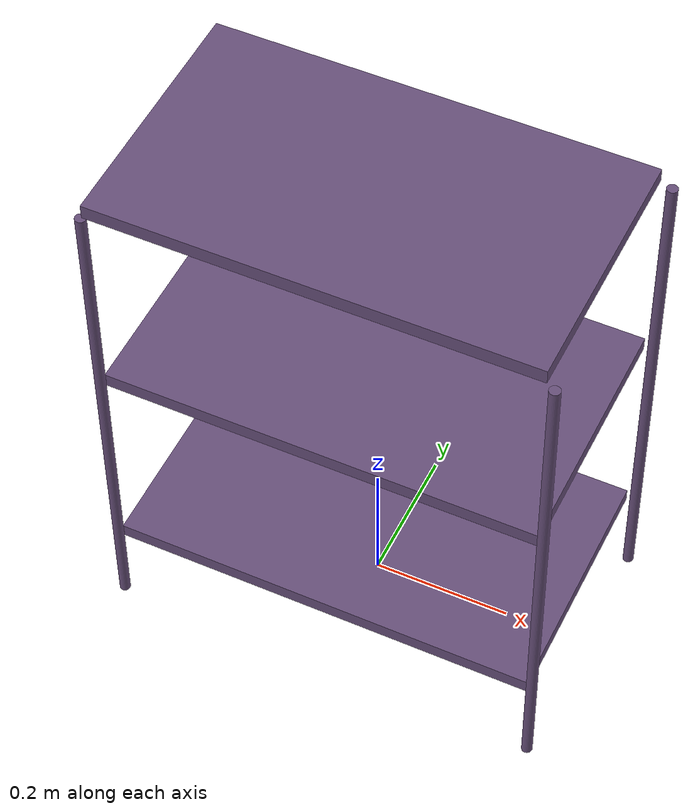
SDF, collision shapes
<?xml version="1.0" ?>
<sdf version="1.5">
 <model name="Wire_Shelf">
<static>1</static>
    <link name="lvl_1">
	<pose>0 -0.015 0.78 0 0 0</pose>
	<inertial>
	  <mass>1.5306</mass>
	   <inertia>
	     <ixx>0.0162</ixx>
	     <iyy>0.0475</iyy>
	     <izz>0.0635</izz>
    	     <ixy>0</ixy>
	     <ixz>0</ixz>
	     <iyz>0</iyz>
	   </inertia>
	</inertial>
	<collision name="body">
	  <geometry>
	    <box>
	      <size> 0.6096 0.3556 0.0203 </size>
	    </box>
	  </geometry>
	</collision>
	<visual name="bodyMesh">
	<pose>-0.32 0.005 -0.65  0 0  -1.58</pose>
	  <geometry>
	  <mesh>
	    <uri>model://Wire_Shelf/meshes/level.dae</uri>
		<scale> 0.81 0.68 0.8 </scale>
	  </mesh>
	  </geometry>
	  <material>
	    <ambient>0.408 0.314 0.482 1</ambient>
	    <diffuse>0.408 0.314 0.482 1</diffuse>
	    <specular>0.1 0.1 0.1 1</specular>
	  </material>
	</visual>
      </link>
 <joint type="fixed" name="1_1">
      <pose frame=''>-0.3048 0.1778 0 0 0 0</pose>
         <parent>leg_1</parent>
  	 <child>lvl_1</child>
	 <axis>
	   <xyz>1 0 0</xyz>
	 </axis>
       </joint>

   <joint type="fixed" name="1_2">
      <pose frame=''>0.3048 0.1778 0 0 0 0</pose>
         <parent>leg_2</parent>
  	 <child>lvl_1</child>
	 <axis>
	   <xyz>1 0 0</xyz>
	 </axis>
       </joint>

   <joint type="fixed" name="1_3">
      <pose frame=''>0.3048 -0.1778 0 0 0 0</pose>
         <parent>leg_3</parent>
  	 <child>lvl_1</child>
	 <axis>
	   <xyz>1 0 0</xyz>
	 </axis>
       </joint>

  <joint type="fixed" name="1_4">
      <pose frame=''>-0.3048 -0.1778 0 0 0 0</pose>
         <parent>leg_4</parent>
  	 <child>lvl_1</child>
	 <axis>
	   <xyz>1 0 0</xyz>
	 </axis>
       </joint>

  <link name="lvl_2">
	<pose> 0 -0.005 0.4549 0 0 0</pose>
	<inertial>
	  <mass>1.5306</mass>
	   <inertia>
	     <ixx>0.0162</ixx>
	     <iyy>0.0475</iyy>
	     <izz>0.0635</izz>
    	     <ixy>0</ixy>
	     <ixz>0</ixz>
	     <iyz>0</iyz>
	   </inertia>
	</inertial>
	<collision name="body">
	  <geometry>
	    <box>
	      <size> 0.6096 0.3561 0.0203 </size>
	    </box>
	  </geometry>
	</collision>
	<visual name="bodyMesh">
	<pose>-0.32 -0.005 -0.65  0 0  -1.58</pose>
	  <geometry>
	  <mesh>
	    <uri>model://Wire_Shelf/meshes/level.dae</uri>
		<scale> 0.81 0.68 0.8 </scale>
	  </mesh>
	  </geometry>
	  <material>
	    <ambient>0.408 0.314 0.482 1</ambient>
	    <diffuse>0.408 0.314 0.482 1</diffuse>
	    <specular>0.1 0.1 0.1 1</specular>
	  </material>
	</visual>
      </link>

   <joint type="fixed" name="2_1">
      <pose frame=''>-0.3048 0.1778 0 0 0 0</pose>
         <parent>leg_1</parent>
  	 <child>lvl_2</child>
	 <axis>
	   <xyz>1 0 0</xyz>
	 </axis>
       </joint>

   <joint type="fixed" name="2_2">
      <pose frame=''>0.3048 0.1778 0 0 0 0</pose>
         <parent>leg_2</parent>
  	 <child>lvl_2</child>
	 <axis>
	   <xyz>1 0 0</xyz>
	 </axis>
       </joint>

   <joint type="fixed" name="2_3">
      <pose frame=''>0.3048 -0.1778 0 0 0 0</pose>
         <parent>leg_3</parent>
  	 <child>lvl_2</child>
	 <axis>
	   <xyz>1 0 0</xyz>
	 </axis>
       </joint>

  <joint type="fixed" name="2_4">
      <pose frame=''>-0.3048 -0.1778 0 0 0 0</pose>
         <parent>leg_4</parent>
  	 <child>lvl_2</child>
	 <axis>
	   <xyz>1 0 0</xyz>
	 </axis>
       </joint>

  <link name="lvl_3">
	<pose> 0 -0.005 0.12976 0 0 0</pose>
	<inertial>
	  <mass>1.5306</mass>
	   <inertia>
	     <ixx>0.0162</ixx>
	     <iyy>0.0475</iyy>
	     <izz>0.0635</izz>
    	     <ixy>0</ixy>
	     <ixz>0</ixz>
	     <iyz>0</iyz>
	   </inertia>
	</inertial>
	<collision name="body">
	  <geometry>
	    <box>
	      <size> 0.6096 0.3556 0.0203 </size>
	    </box>
	  </geometry>
	</collision>
	<visual name="bodyMesh">
	<pose>-0.32 -0.005 -0.65  0 0  -1.58</pose>
	  <geometry>
	  <mesh>
	    <uri>model://Wire_Shelf/meshes/level.dae</uri>
		<scale> 0.81 0.68 0.8 </scale>
	  </mesh>
	  </geometry>
	  <material>
	    <ambient>0.408 0.314 0.482 1</ambient>
	    <diffuse>0.408 0.314 0.482 1</diffuse>
	    <specular>0.1 0.1 0.1 1</specular>
	  </material>
	</visual>
      </link>

 <joint type="fixed" name="3_1">
      <pose frame=''>-0.3048 0.1778 0 0 0 0</pose>
         <parent>leg_1</parent>
  	 <child>lvl_3</child>
	 <axis>
	   <xyz>1 0 0</xyz>
	 </axis>
       </joint>

   <joint type="fixed" name="3_2">
      <pose frame=''>0.3048 0.1778 0 0 0 0</pose>
         <parent>leg_2</parent>
  	 <child>lvl_3</child>
	 <axis>
	   <xyz>1 0 0</xyz>
	 </axis>
       </joint>

   <joint type="fixed" name="3_3">
      <pose frame=''>0.3048 -0.1778 0 0 0 0</pose>
         <parent>leg_3</parent>
  	 <child>lvl_3</child>
	 <axis>
	   <xyz>1 0 0</xyz>
	 </axis>
       </joint>

  <joint type="fixed" name="3_4">
      <pose frame=''>-0.3048 -0.1778 0 0 0 0</pose>
         <parent>leg_4</parent>
  	 <child>lvl_3</child>
	 <axis>
	   <xyz>1 0 0</xyz>
	 </axis>
       </joint>

 <link name="leg_1">
	<pose> -0.3048 0.1673 0.381 0 0 0</pose>
	<inertial>
	  <mass>0.0483</mass>
	   <inertia>
	     <ixx>0.0023</ixx>
	     <iyy>0.0023</iyy>
	     <izz>0.0000014023</izz>
    	     <ixy>0</ixy>
	     <ixz>0</ixz>
	     <iyz>0</iyz>
	   </inertia>
	</inertial>
	<collision name="body">
	  <geometry>
	    <cylinder>
	      <radius> 0.007620 </radius>
	      <length> 0.762 </length>
	    </cylinder>
	  </geometry>
	</collision>
	<visual name="bodyMesh">
	<pose>-0.0122  0.01 -1.3655  0 0  -1.58</pose>
	  <geometry>
	  <mesh>
	    <uri>model://Wire_Shelf/meshes/leg.dae</uri>
		<scale> 0.8 0.8 0.95 </scale>
	  </mesh>
	  </geometry>
	  <material>
	    <ambient>0.408 0.314 0.482 1</ambient>
	    <diffuse>0.408 0.314 0.482 1</diffuse>
	    <specular>0.1 0.1 0.1 1</specular>
	  </material>
	</visual>
      </link>
  <link name="leg_2">
	<pose>0.3202  0.1643 0.381 0 0 0</pose>
	<inertial>
	  <mass>0.0483</mass>
	   <inertia>
	     <ixx>0.0023</ixx>
	     <iyy>0.0023</iyy>
	     <izz>0.0000014023</izz>
    	     <ixy>0</ixy>
	     <ixz>0</ixz>
	     <iyz>0</iyz>
	   </inertia>
	</inertial>
	<collision name="body">
	 <geometry>
	    <cylinder>
	      <radius> 0.007620 </radius>
	      <length> 0.762 </length>
	    </cylinder>
	  </geometry>
	</collision>
	<visual name="bodyMesh">
	<pose>-0.0122  0.01 -1.3655  0 0  -1.58</pose>
	  <geometry>
	  <mesh>
	    <uri>model://Wire_Shelf/meshes/leg.dae</uri>
		<scale> 0.8 0.8 0.95 </scale>
	  </mesh>
	  </geometry>
	  <material>
	    <ambient>0.408 0.314 0.482 1</ambient>
	    <diffuse>0.408 0.314 0.482 1</diffuse>
	    <specular>0.1 0.1 0.1 1</specular>
	  </material>
	</visual>
      </link>

  <link name="leg_3">
	<pose> 0.3152 -0.1927 0.381 0 0 0</pose>
	<inertial>
	  <mass>0.0483</mass>
	   <inertia>
	     <ixx>0.0023</ixx>
	     <iyy>0.0023</iyy>
	     <izz>0.0000014023</izz>
    	     <ixy>0</ixy>
	     <ixz>0</ixz>
	     <iyz>0</iyz>
	   </inertia>
	</inertial>
	<collision name="body">
	 <geometry>
	    <cylinder>
	      <radius> 0.007620 </radius>
	      <length> 0.762 </length>
	    </cylinder>
	  </geometry>
	</collision>
	<visual name="bodyMesh">
	<pose>-0.0122  0.005 -1.3655  0 0  -1.58</pose>
	  <geometry>
	  <mesh>
	    <uri>model://Wire_Shelf/meshes/leg.dae</uri>
		<scale> 0.8 0.8 0.95 </scale>
	  </mesh>
	  </geometry>
	  <material>
	    <ambient>0.408 0.314 0.482 1</ambient>
	    <diffuse>0.408 0.314 0.482 1</diffuse>
	    <specular>0.1 0.1 0.1 1</specular>
	  </material>
	</visual>
      </link>
  <link name="leg_4">

      <pose> -0.3098 -0.1877 0.381 0 0 0</pose>
	<inertial>
	  <mass>0.0483</mass>
	   <inertia>
	     <ixx>0.0023</ixx>
	     <iyy>0.0023</iyy>
	     <izz>0.0000014023</izz>
    	     <ixy>0</ixy>
	     <ixz>0</ixz>
	     <iyz>0</iyz>
	   </inertia>
	</inertial>
	<collision name="body">
	  <geometry>
	    <cylinder>
	      <radius> 0.007620 </radius>
	      <length> 0.762 </length>
	    </cylinder>
	  </geometry>
	</collision>
	<visual name="bodyMesh">
	<pose>-0.0122  0.005 -1.3655  0 0  -1.58</pose>
	  <geometry>
	  <mesh>
	    <uri>model://Wire_Shelf/meshes/leg.dae</uri>
		<scale> 0.8 0.8 0.95 </scale>
	  </mesh>
	  </geometry>
	  <material>
	    <ambient>0.408 0.314 0.482 1</ambient>
	    <diffuse>0.408 0.314 0.482 1</diffuse>
	    <specular>0.1 0.1 0.1 1</specular>
	  </material>
	</visual>
      </link>
 </model>
</sdf>
